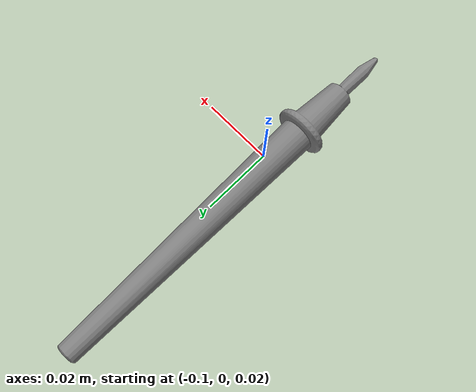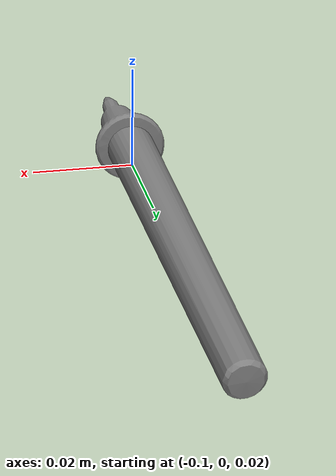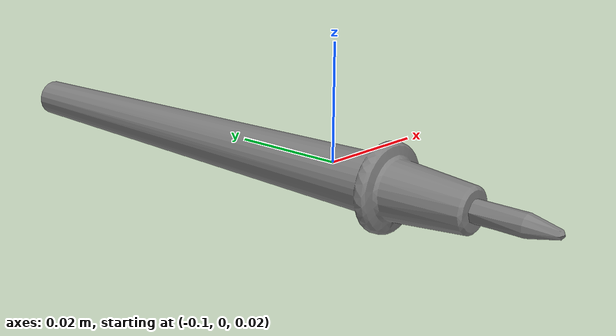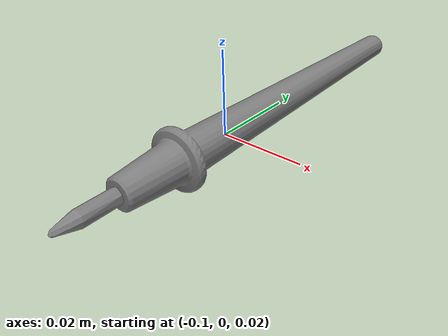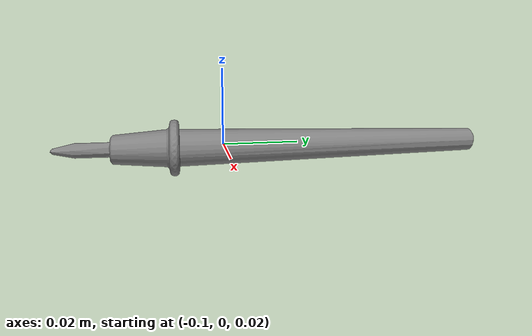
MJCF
<?xml version="1.0" ?>
<mujoco model="task_board_probe">
	<compiler meshdir="task_board/meshes" texturedir="task_board/textures" angle="radian" autolimits="true" balanceinertia="true" />
	<option timestep="0.001" integrator="RK4" gravity="0 0 -9.81" >
        <flag energy="enable" contact="enable"/>
    </option>
	<asset>
        <mesh name="TaskBoardProbe" file="stl/TaskBoardProbe.stl" />
        <mesh name="UCX_TaskBoardProbe_001" file="stl/UCX_TaskBoardProbe_001.stl" />
        <mesh name="UCX_TaskBoardProbe_002" file="stl/UCX_TaskBoardProbe_002.stl" />
        <mesh name="UCX_TaskBoardProbe_003" file="stl/UCX_TaskBoardProbe_003.stl" />
        <mesh name="UCX_TaskBoardProbe_004" file="stl/UCX_TaskBoardProbe_004.stl" />
    </asset>

    <default>
		<default class="task_board_probe_visual">
			<geom contype="0" conaffinity="0"/>
		</default>
		<default class="task_board_probe_collision">
			<geom rgba="0.9 0.9 0.9 1.0" group="3"/>
		</default>
	</default>
	<worldbody>
		<body name="task_board_probe" pos="-0.101844 -0.007 0.019" quat="1.0 0.0 0.0 0.0">
			<inertial mass="0.006231526378542185" pos="-2.27348695425178e-11 0.0001277880510315299 -3.0341962276025924e-09" quat="-0.4846147894859314 -0.5149257183074951 0.5149257183074951 0.4846147894859314" diaginertia="6.648315320489928e-08 5.043107648816658e-06 5.043107648816658e-06"/>
			<freejoint/>
			<geom name="task_board_probe_visual" type="mesh" pos="-1.1167492885988395e-07 0.016684556379914284 2.0637875408624495e-08" quat="0.7071067690849304 0.7071067690849304 0.0 0.0" mesh="TaskBoardProbe" rgba="0.5 0.5 0.5 1.0" class="task_board_probe_visual"/>
			<geom name="task_board_probe_collision_001" type="mesh" pos="-1.2777578474454376e-12 -0.028279362246394157 -1.9006438645163826e-09" quat="0.7071067690849304 0.7071067690849304 0.0 0.0" mesh="UCX_TaskBoardProbe_001" class="task_board_probe_collision"/>
			<geom name="task_board_probe_collision_002" type="mesh" pos="-2.993737419423881e-12 -0.014133143238723278 -3.2889999612706333e-09" quat="0.7071067690849304 0.7071067690849304 0.0 0.0" mesh="UCX_TaskBoardProbe_002" class="task_board_probe_collision"/>
			<geom name="task_board_probe_collision_003" type="mesh" pos="1.3151225984955883e-12 -0.00588131882250309 -2.1292419216667469e-10" quat="0.7071067690849304 0.0 0.0 0.7071067690849304" mesh="UCX_TaskBoardProbe_003" class="task_board_probe_collision"/>
			<geom name="task_board_probe_collision_004" type="mesh" pos="6.804208238508913e-12 0.031408458948135376 -3.2541387362527985e-09" quat="0.7071067690849304 0.7071067690849304 0.0 0.0" mesh="UCX_TaskBoardProbe_004" class="task_board_probe_collision"/>
		</body>
	</worldbody>
</mujoco>
